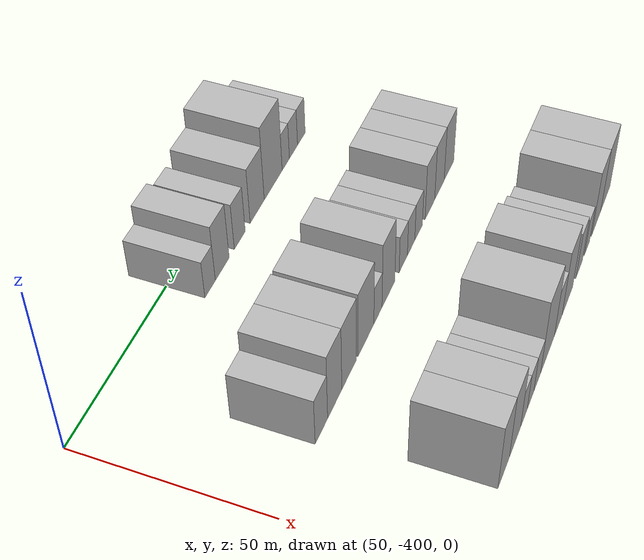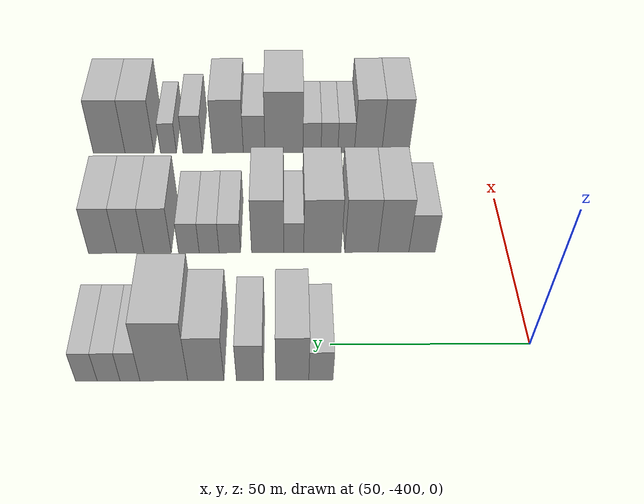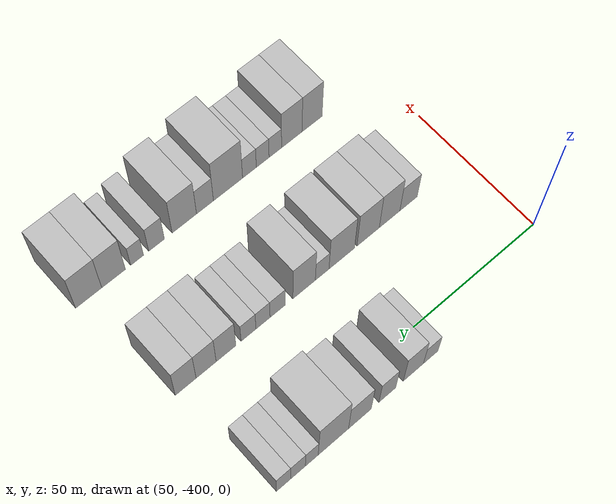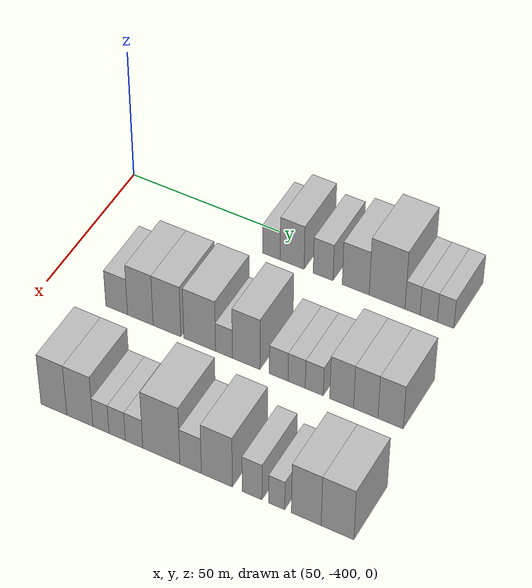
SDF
<sdf version="1.6">
 <world name="default">
  <model name="building_1">
   <static>1</static>
   <pose>50.0000 -347.2101 0 0.000000 0.000000 0.000000</pose>
   <link name="link">
    <pose>0 0 6.00 0 0 0</pose>
    <collision name="collision"><geometry><box><size>20.0000 5.8599 12.0000</size></box></geometry></collision>
    <visual name="visual">
     <cast_shadows>0</cast_shadows>
     <geometry><box><size>20.0000 5.8599 12.0000</size></box></geometry>
     <material>
      <script>
       <uri>model://HANNAS_wall/materials/scripts</uri>
       <uri>model://HANNAS_wall/materials/textures</uri>
       <name>vrc/HANNAS_wall</name>
      </script>
     </material>
    </visual>
   </link>
  </model>
  <model name="building_2">
   <static>1</static>
   <pose>50.0000 -340.2969 0 0.000000 0.000000 0.000000</pose>
   <link name="link">
    <pose>0 0 9.00 0 0 0</pose>
    <collision name="collision"><geometry><box><size>20.0000 7.9666 18.0000</size></box></geometry></collision>
    <visual name="visual">
     <cast_shadows>0</cast_shadows>
     <geometry><box><size>20.0000 7.9666 18.0000</size></box></geometry>
     <material>
      <script>
       <uri>model://HANNAS_wall/materials/scripts</uri>
       <uri>model://HANNAS_wall/materials/textures</uri>
       <name>vrc/HANNAS_wall</name>
      </script>
     </material>
    </visual>
   </link>
  </model>
  <model name="building_3">
   <static>1</static>
   <pose>50.0000 -330.0451 0 0.000000 0.000000 0.000000</pose>
   <link name="link">
    <pose>0 0 7.50 0 0 0</pose>
    <collision name="collision"><geometry><box><size>20.0000 6.5369 15.0000</size></box></geometry></collision>
    <visual name="visual">
     <cast_shadows>0</cast_shadows>
     <geometry><box><size>20.0000 6.5369 15.0000</size></box></geometry>
     <material>
      <script>
       <uri>model://HANNAS_wall/materials/scripts</uri>
       <uri>model://HANNAS_wall/materials/textures</uri>
       <name>vrc/HANNAS_wall</name>
      </script>
     </material>
    </visual>
   </link>
  </model>
  <model name="building_4">
   <static>1</static>
   <pose>50.0000 -319.3938 0 0.000000 0.000000 0.000000</pose>
   <link name="link">
    <pose>0 0 9.00 0 0 0</pose>
    <collision name="collision"><geometry><box><size>20.0000 8.7658 18.0000</size></box></geometry></collision>
    <visual name="visual">
     <cast_shadows>0</cast_shadows>
     <geometry><box><size>20.0000 8.7658 18.0000</size></box></geometry>
     <material>
      <script>
       <uri>model://HANNAS_wall/materials/scripts</uri>
       <uri>model://HANNAS_wall/materials/textures</uri>
       <name>vrc/HANNAS_wall</name>
      </script>
     </material>
    </visual>
   </link>
  </model>
  <model name="building_5">
   <static>1</static>
   <pose>50.0000 -309.2314 0 0.000000 0.000000 0.000000</pose>
   <link name="link">
    <pose>0 0 12.00 0 0 0</pose>
    <collision name="collision"><geometry><box><size>20.0000 11.5589 24.0000</size></box></geometry></collision>
    <visual name="visual">
     <cast_shadows>0</cast_shadows>
     <geometry><box><size>20.0000 11.5589 24.0000</size></box></geometry>
     <material>
      <script>
       <uri>model://HANNAS_wall/materials/scripts</uri>
       <uri>model://HANNAS_wall/materials/textures</uri>
       <name>vrc/HANNAS_wall</name>
      </script>
     </material>
    </visual>
   </link>
  </model>
  <model name="building_6">
   <static>1</static>
   <pose>50.0000 -301.0503 0 0.000000 0.000000 0.000000</pose>
   <link name="link">
    <pose>0 0 6.00 0 0 0</pose>
    <collision name="collision"><geometry><box><size>20.0000 4.8033 12.0000</size></box></geometry></collision>
    <visual name="visual">
     <cast_shadows>0</cast_shadows>
     <geometry><box><size>20.0000 4.8033 12.0000</size></box></geometry>
     <material>
      <script>
       <uri>model://HANNAS_wall/materials/scripts</uri>
       <uri>model://HANNAS_wall/materials/textures</uri>
       <name>vrc/HANNAS_wall</name>
      </script>
     </material>
    </visual>
   </link>
  </model>
  <model name="building_7">
   <static>1</static>
   <pose>50.0000 -295.8936 0 0.000000 0.000000 0.000000</pose>
   <link name="link">
    <pose>0 0 6.00 0 0 0</pose>
    <collision name="collision"><geometry><box><size>20.0000 5.5101 12.0000</size></box></geometry></collision>
    <visual name="visual">
     <cast_shadows>0</cast_shadows>
     <geometry><box><size>20.0000 5.5101 12.0000</size></box></geometry>
     <material>
      <script>
       <uri>model://HANNAS_wall/materials/scripts</uri>
       <uri>model://HANNAS_wall/materials/textures</uri>
       <name>vrc/HANNAS_wall</name>
      </script>
     </material>
    </visual>
   </link>
  </model>
  <model name="building_8">
   <static>1</static>
   <pose>50.0000 -290.5220 0 0.000000 0.000000 0.000000</pose>
   <link name="link">
    <pose>0 0 6.00 0 0 0</pose>
    <collision name="collision"><geometry><box><size>20.0000 5.2332 12.0000</size></box></geometry></collision>
    <visual name="visual">
     <cast_shadows>0</cast_shadows>
     <geometry><box><size>20.0000 5.2332 12.0000</size></box></geometry>
     <material>
      <script>
       <uri>model://HANNAS_wall/materials/scripts</uri>
       <uri>model://HANNAS_wall/materials/textures</uri>
       <name>vrc/HANNAS_wall</name>
      </script>
     </material>
    </visual>
   </link>
  </model>
  <model name="building_83">
   <static>1</static>
   <pose>90.0000 -376.3585 0 0.000000 0.000000 0.000000</pose>
   <link name="link">
    <pose>0 0 7.50 0 0 0</pose>
    <collision name="collision"><geometry><box><size>20.0000 7.2830 15.0000</size></box></geometry></collision>
    <visual name="visual">
     <cast_shadows>0</cast_shadows>
     <geometry><box><size>20.0000 7.2830 15.0000</size></box></geometry>
     <material>
      <script>
       <uri>model://HANNAS_wall/materials/scripts</uri>
       <uri>model://HANNAS_wall/materials/textures</uri>
       <name>vrc/HANNAS_wall</name>
      </script>
     </material>
    </visual>
   </link>
  </model>
  <model name="building_84">
   <static>1</static>
   <pose>90.0000 -368.4605 0 0.000000 0.000000 0.000000</pose>
   <link name="link">
    <pose>0 0 10.50 0 0 0</pose>
    <collision name="collision"><geometry><box><size>20.0000 8.5130 21.0000</size></box></geometry></collision>
    <visual name="visual">
     <cast_shadows>0</cast_shadows>
     <geometry><box><size>20.0000 8.5130 21.0000</size></box></geometry>
     <material>
      <script>
       <uri>model://HANNAS_wall/materials/scripts</uri>
       <uri>model://HANNAS_wall/materials/textures</uri>
       <name>vrc/HANNAS_wall</name>
      </script>
     </material>
    </visual>
   </link>
  </model>
  <model name="building_85">
   <static>1</static>
   <pose>90.0000 -359.6305 0 0.000000 0.000000 0.000000</pose>
   <link name="link">
    <pose>0 0 10.50 0 0 0</pose>
    <collision name="collision"><geometry><box><size>20.0000 9.1469 21.0000</size></box></geometry></collision>
    <visual name="visual">
     <cast_shadows>0</cast_shadows>
     <geometry><box><size>20.0000 9.1469 21.0000</size></box></geometry>
     <material>
      <script>
       <uri>model://HANNAS_wall/materials/scripts</uri>
       <uri>model://HANNAS_wall/materials/textures</uri>
       <name>vrc/HANNAS_wall</name>
      </script>
     </material>
    </visual>
   </link>
  </model>
  <model name="building_86">
   <static>1</static>
   <pose>90.0000 -348.8910 0 0.000000 0.000000 0.000000</pose>
   <link name="link">
    <pose>0 0 10.50 0 0 0</pose>
    <collision name="collision"><geometry><box><size>20.0000 10.3321 21.0000</size></box></geometry></collision>
    <visual name="visual">
     <cast_shadows>0</cast_shadows>
     <geometry><box><size>20.0000 10.3321 21.0000</size></box></geometry>
     <material>
      <script>
       <uri>model://HANNAS_wall/materials/scripts</uri>
       <uri>model://HANNAS_wall/materials/textures</uri>
       <name>vrc/HANNAS_wall</name>
      </script>
     </material>
    </visual>
   </link>
  </model>
  <model name="building_87">
   <static>1</static>
   <pose>90.0000 -341.0014 0 0.000000 0.000000 0.000000</pose>
   <link name="link">
    <pose>0 0 6.00 0 0 0</pose>
    <collision name="collision"><geometry><box><size>20.0000 5.4469 12.0000</size></box></geometry></collision>
    <visual name="visual">
     <cast_shadows>0</cast_shadows>
     <geometry><box><size>20.0000 5.4469 12.0000</size></box></geometry>
     <material>
      <script>
       <uri>model://HANNAS_wall/materials/scripts</uri>
       <uri>model://HANNAS_wall/materials/textures</uri>
       <name>vrc/HANNAS_wall</name>
      </script>
     </material>
    </visual>
   </link>
  </model>
  <model name="building_88">
   <static>1</static>
   <pose>90.0000 -333.8398 0 0.000000 0.000000 0.000000</pose>
   <link name="link">
    <pose>0 0 10.50 0 0 0</pose>
    <collision name="collision"><geometry><box><size>20.0000 8.8764 21.0000</size></box></geometry></collision>
    <visual name="visual">
     <cast_shadows>0</cast_shadows>
     <geometry><box><size>20.0000 8.8764 21.0000</size></box></geometry>
     <material>
      <script>
       <uri>model://HANNAS_wall/materials/scripts</uri>
       <uri>model://HANNAS_wall/materials/textures</uri>
       <name>vrc/HANNAS_wall</name>
      </script>
     </material>
    </visual>
   </link>
  </model>
  <model name="building_89">
   <static>1</static>
   <pose>90.0000 -323.4327 0 0.000000 0.000000 0.000000</pose>
   <link name="link">
    <pose>0 0 6.00 0 0 0</pose>
    <collision name="collision"><geometry><box><size>20.0000 5.9376 12.0000</size></box></geometry></collision>
    <visual name="visual">
     <cast_shadows>0</cast_shadows>
     <geometry><box><size>20.0000 5.9376 12.0000</size></box></geometry>
     <material>
      <script>
       <uri>model://HANNAS_wall/materials/scripts</uri>
       <uri>model://HANNAS_wall/materials/textures</uri>
       <name>vrc/HANNAS_wall</name>
      </script>
     </material>
    </visual>
   </link>
  </model>
  <model name="building_90">
   <static>1</static>
   <pose>90.0000 -317.7315 0 0.000000 0.000000 0.000000</pose>
   <link name="link">
    <pose>0 0 6.00 0 0 0</pose>
    <collision name="collision"><geometry><box><size>20.0000 5.4647 12.0000</size></box></geometry></collision>
    <visual name="visual">
     <cast_shadows>0</cast_shadows>
     <geometry><box><size>20.0000 5.4647 12.0000</size></box></geometry>
     <material>
      <script>
       <uri>model://HANNAS_wall/materials/scripts</uri>
       <uri>model://HANNAS_wall/materials/textures</uri>
       <name>vrc/HANNAS_wall</name>
      </script>
     </material>
    </visual>
   </link>
  </model>
  <model name="building_91">
   <static>1</static>
   <pose>90.0000 -312.1527 0 0.000000 0.000000 0.000000</pose>
   <link name="link">
    <pose>0 0 6.00 0 0 0</pose>
    <collision name="collision"><geometry><box><size>20.0000 5.6929 12.0000</size></box></geometry></collision>
    <visual name="visual">
     <cast_shadows>0</cast_shadows>
     <geometry><box><size>20.0000 5.6929 12.0000</size></box></geometry>
     <material>
      <script>
       <uri>model://HANNAS_wall/materials/scripts</uri>
       <uri>model://HANNAS_wall/materials/textures</uri>
       <name>vrc/HANNAS_wall</name>
      </script>
     </material>
    </visual>
   </link>
  </model>
  <model name="building_92">
   <static>1</static>
   <pose>90.0000 -303.5715 0 0.000000 0.000000 0.000000</pose>
   <link name="link">
    <pose>0 0 9.00 0 0 0</pose>
    <collision name="collision"><geometry><box><size>20.0000 7.4697 18.0000</size></box></geometry></collision>
    <visual name="visual">
     <cast_shadows>0</cast_shadows>
     <geometry><box><size>20.0000 7.4697 18.0000</size></box></geometry>
     <material>
      <script>
       <uri>model://HANNAS_wall/materials/scripts</uri>
       <uri>model://HANNAS_wall/materials/textures</uri>
       <name>vrc/HANNAS_wall</name>
      </script>
     </material>
    </visual>
   </link>
  </model>
  <model name="building_93">
   <static>1</static>
   <pose>90.0000 -296.0632 0 0.000000 0.000000 0.000000</pose>
   <link name="link">
    <pose>0 0 9.00 0 0 0</pose>
    <collision name="collision"><geometry><box><size>20.0000 7.5468 18.0000</size></box></geometry></collision>
    <visual name="visual">
     <cast_shadows>0</cast_shadows>
     <geometry><box><size>20.0000 7.5468 18.0000</size></box></geometry>
     <material>
      <script>
       <uri>model://HANNAS_wall/materials/scripts</uri>
       <uri>model://HANNAS_wall/materials/textures</uri>
       <name>vrc/HANNAS_wall</name>
      </script>
     </material>
    </visual>
   </link>
  </model>
  <model name="building_94">
   <static>1</static>
   <pose>90.0000 -288.4073 0 0.000000 0.000000 0.000000</pose>
   <link name="link">
    <pose>0 0 9.00 0 0 0</pose>
    <collision name="collision"><geometry><box><size>20.0000 7.7650 18.0000</size></box></geometry></collision>
    <visual name="visual">
     <cast_shadows>0</cast_shadows>
     <geometry><box><size>20.0000 7.7650 18.0000</size></box></geometry>
     <material>
      <script>
       <uri>model://HANNAS_wall/materials/scripts</uri>
       <uri>model://HANNAS_wall/materials/textures</uri>
       <name>vrc/HANNAS_wall</name>
      </script>
     </material>
    </visual>
   </link>
  </model>
  <model name="building_173">
   <static>1</static>
   <pose>130.0000 -372.7880 0 0.000000 0.000000 0.000000</pose>
   <link name="link">
    <pose>0 0 10.50 0 0 0</pose>
    <collision name="collision"><geometry><box><size>20.0000 8.4240 21.0000</size></box></geometry></collision>
    <visual name="visual">
     <cast_shadows>0</cast_shadows>
     <geometry><box><size>20.0000 8.4240 21.0000</size></box></geometry>
     <material>
      <script>
       <uri>model://HANNAS_wall/materials/scripts</uri>
       <uri>model://HANNAS_wall/materials/textures</uri>
       <name>vrc/HANNAS_wall</name>
      </script>
     </material>
    </visual>
   </link>
  </model>
  <model name="building_174">
   <static>1</static>
   <pose>130.0000 -364.3390 0 0.000000 0.000000 0.000000</pose>
   <link name="link">
    <pose>0 0 10.50 0 0 0</pose>
    <collision name="collision"><geometry><box><size>20.0000 8.4742 21.0000</size></box></geometry></collision>
    <visual name="visual">
     <cast_shadows>0</cast_shadows>
     <geometry><box><size>20.0000 8.4742 21.0000</size></box></geometry>
     <material>
      <script>
       <uri>model://HANNAS_wall/materials/scripts</uri>
       <uri>model://HANNAS_wall/materials/textures</uri>
       <name>vrc/HANNAS_wall</name>
      </script>
     </material>
    </visual>
   </link>
  </model>
  <model name="building_175">
   <static>1</static>
   <pose>130.0000 -357.5301 0 0.000000 0.000000 0.000000</pose>
   <link name="link">
    <pose>0 0 6.00 0 0 0</pose>
    <collision name="collision"><geometry><box><size>20.0000 5.1436 12.0000</size></box></geometry></collision>
    <visual name="visual">
     <cast_shadows>0</cast_shadows>
     <geometry><box><size>20.0000 5.1436 12.0000</size></box></geometry>
     <material>
      <script>
       <uri>model://HANNAS_wall/materials/scripts</uri>
       <uri>model://HANNAS_wall/materials/textures</uri>
       <name>vrc/HANNAS_wall</name>
      </script>
     </material>
    </visual>
   </link>
  </model>
  <model name="building_176">
   <static>1</static>
   <pose>130.0000 -352.3601 0 0.000000 0.000000 0.000000</pose>
   <link name="link">
    <pose>0 0 6.00 0 0 0</pose>
    <collision name="collision"><geometry><box><size>20.0000 5.1964 12.0000</size></box></geometry></collision>
    <visual name="visual">
     <cast_shadows>0</cast_shadows>
     <geometry><box><size>20.0000 5.1964 12.0000</size></box></geometry>
     <material>
      <script>
       <uri>model://HANNAS_wall/materials/scripts</uri>
       <uri>model://HANNAS_wall/materials/textures</uri>
       <name>vrc/HANNAS_wall</name>
      </script>
     </material>
    </visual>
   </link>
  </model>
  <model name="building_177">
   <static>1</static>
   <pose>130.0000 -346.9806 0 0.000000 0.000000 0.000000</pose>
   <link name="link">
    <pose>0 0 6.00 0 0 0</pose>
    <collision name="collision"><geometry><box><size>20.0000 5.5626 12.0000</size></box></geometry></collision>
    <visual name="visual">
     <cast_shadows>0</cast_shadows>
     <geometry><box><size>20.0000 5.5626 12.0000</size></box></geometry>
     <material>
      <script>
       <uri>model://HANNAS_wall/materials/scripts</uri>
       <uri>model://HANNAS_wall/materials/textures</uri>
       <name>vrc/HANNAS_wall</name>
      </script>
     </material>
    </visual>
   </link>
  </model>
  <model name="building_178">
   <static>1</static>
   <pose>130.0000 -338.3600 0 0.000000 0.000000 0.000000</pose>
   <link name="link">
    <pose>0 0 12.00 0 0 0</pose>
    <collision name="collision"><geometry><box><size>20.0000 11.6785 24.0000</size></box></geometry></collision>
    <visual name="visual">
     <cast_shadows>0</cast_shadows>
     <geometry><box><size>20.0000 11.6785 24.0000</size></box></geometry>
     <material>
      <script>
       <uri>model://HANNAS_wall/materials/scripts</uri>
       <uri>model://HANNAS_wall/materials/textures</uri>
       <name>vrc/HANNAS_wall</name>
      </script>
     </material>
    </visual>
   </link>
  </model>
  <model name="building_179">
   <static>1</static>
   <pose>130.0000 -329.1686 0 0.000000 0.000000 0.000000</pose>
   <link name="link">
    <pose>0 0 7.50 0 0 0</pose>
    <collision name="collision"><geometry><box><size>20.0000 6.7044 15.0000</size></box></geometry></collision>
    <visual name="visual">
     <cast_shadows>0</cast_shadows>
     <geometry><box><size>20.0000 6.7044 15.0000</size></box></geometry>
     <material>
      <script>
       <uri>model://HANNAS_wall/materials/scripts</uri>
       <uri>model://HANNAS_wall/materials/textures</uri>
       <name>vrc/HANNAS_wall</name>
      </script>
     </material>
    </visual>
   </link>
  </model>
  <model name="building_180">
   <static>1</static>
   <pose>130.0000 -321.0222 0 0.000000 0.000000 0.000000</pose>
   <link name="link">
    <pose>0 0 10.50 0 0 0</pose>
    <collision name="collision"><geometry><box><size>20.0000 9.5884 21.0000</size></box></geometry></collision>
    <visual name="visual">
     <cast_shadows>0</cast_shadows>
     <geometry><box><size>20.0000 9.5884 21.0000</size></box></geometry>
     <material>
      <script>
       <uri>model://HANNAS_wall/materials/scripts</uri>
       <uri>model://HANNAS_wall/materials/textures</uri>
       <name>vrc/HANNAS_wall</name>
      </script>
     </material>
    </visual>
   </link>
  </model>
  <model name="building_181">
   <static>1</static>
   <pose>130.0000 -310.1983 0 0.000000 0.000000 0.000000</pose>
   <link name="link">
    <pose>0 0 7.50 0 0 0</pose>
    <collision name="collision"><geometry><box><size>20.0000 6.0593 15.0000</size></box></geometry></collision>
    <visual name="visual">
     <cast_shadows>0</cast_shadows>
     <geometry><box><size>20.0000 6.0593 15.0000</size></box></geometry>
     <material>
      <script>
       <uri>model://HANNAS_wall/materials/scripts</uri>
       <uri>model://HANNAS_wall/materials/textures</uri>
       <name>vrc/HANNAS_wall</name>
      </script>
     </material>
    </visual>
   </link>
  </model>
  <model name="building_182">
   <static>1</static>
   <pose>130.0000 -302.7050 0 0.000000 0.000000 0.000000</pose>
   <link name="link">
    <pose>0 0 6.00 0 0 0</pose>
    <collision name="collision"><geometry><box><size>20.0000 4.9275 12.0000</size></box></geometry></collision>
    <visual name="visual">
     <cast_shadows>0</cast_shadows>
     <geometry><box><size>20.0000 4.9275 12.0000</size></box></geometry>
     <material>
      <script>
       <uri>model://HANNAS_wall/materials/scripts</uri>
       <uri>model://HANNAS_wall/materials/textures</uri>
       <name>vrc/HANNAS_wall</name>
      </script>
     </material>
    </visual>
   </link>
  </model>
  <model name="building_183">
   <static>1</static>
   <pose>130.0000 -293.7721 0 0.000000 0.000000 0.000000</pose>
   <link name="link">
    <pose>0 0 10.50 0 0 0</pose>
    <collision name="collision"><geometry><box><size>20.0000 8.9382 21.0000</size></box></geometry></collision>
    <visual name="visual">
     <cast_shadows>0</cast_shadows>
     <geometry><box><size>20.0000 8.9382 21.0000</size></box></geometry>
     <material>
      <script>
       <uri>model://HANNAS_wall/materials/scripts</uri>
       <uri>model://HANNAS_wall/materials/textures</uri>
       <name>vrc/HANNAS_wall</name>
      </script>
     </material>
    </visual>
   </link>
  </model>
  <model name="building_184">
   <static>1</static>
   <pose>130.0000 -284.4159 0 0.000000 0.000000 0.000000</pose>
   <link name="link">
    <pose>0 0 10.50 0 0 0</pose>
    <collision name="collision"><geometry><box><size>20.0000 9.7742 21.0000</size></box></geometry></collision>
    <visual name="visual">
     <cast_shadows>0</cast_shadows>
     <geometry><box><size>20.0000 9.7742 21.0000</size></box></geometry>
     <material>
      <script>
       <uri>model://HANNAS_wall/materials/scripts</uri>
       <uri>model://HANNAS_wall/materials/textures</uri>
       <name>vrc/HANNAS_wall</name>
      </script>
     </material>
    </visual>
   </link>
  </model>
 </world>
</sdf>
